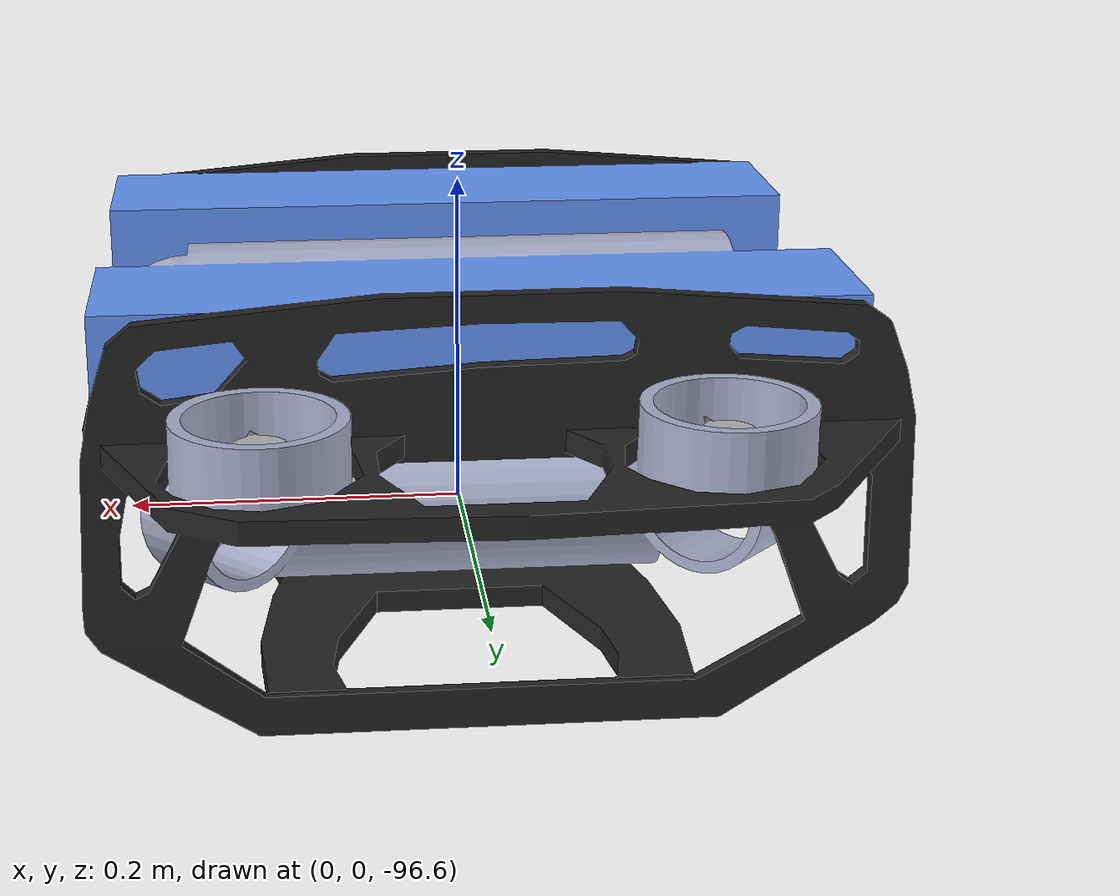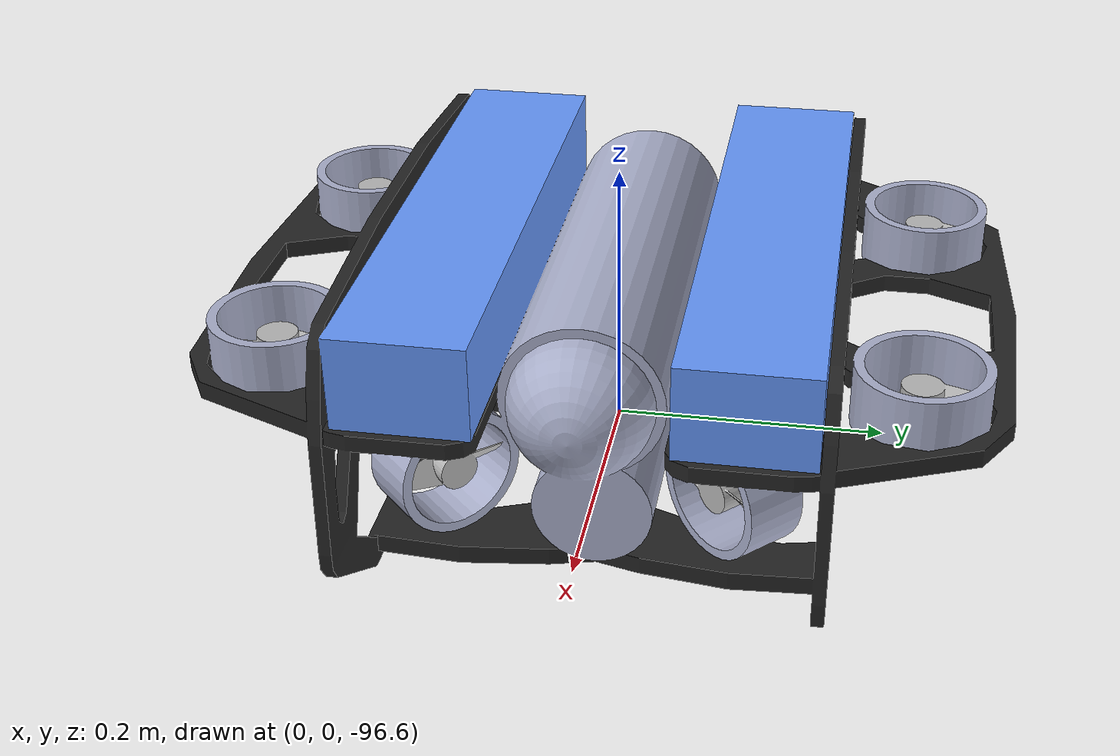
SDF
<?xml version="1.0" encoding="UTF-8"?>
<sdf version="1.9">
    <model name="uuv_bluerov2_heavy">
        <pose>0 0 -96.5   0 0 0</pose>
        <link name="base_link">
            <pose>0 0 0 0 -0 0</pose>
            <inertial>
                <mass>11</mass>
                <inertia>
                    <ixx>0.1</ixx>
                    <ixy>0</ixy>
                    <ixz>0</ixz>
                    <iyy>0.1</iyy>
                    <iyz>0</iyz>
                    <izz>0.1</izz>
                </inertia>
            </inertial>
            <collision name='base_link_collision'>
                <pose>0 0 0 0 -0 0</pose>
                <geometry>
                    <box>
                        <size>0.5 0.5 0.5</size>        <!-- Size of the box: To be adjusted, copy-pasted from omnicopter -->
                    </box>
                </geometry>
                <surface>
                    <contact>
                        <ode>
                            <min_depth>0.001</min_depth>
                            <max_vel>0</max_vel>
                        </ode>
                    </contact>
                    <friction>
                        <ode/>
                    </friction>
                </surface>
            </collision>
            <visual name="base_link_visual">
                <pose>0 0 -0.06 0 -0 0</pose>
                <geometry>
                    <mesh>
                        <uri>model://uuv_bluerov2_heavy/meshes/BlueROV2heavy.dae</uri>
                    </mesh>
                </geometry>
            </visual>
        <sensor name="air_pressure_sensor" type="air_pressure">
            <always_on>1</always_on>
            <update_rate>50</update_rate>
            <air_pressure>
                <pressure>
                    <noise type="gaussian">
                    <mean>0</mean>
                    <stddev>0.01</stddev>
                    </noise>
                </pressure>
            </air_pressure>
        </sensor>
        <sensor name="imu_sensor" type="imu">
            <always_on>1</always_on>
            <update_rate>250</update_rate>
            <imu>
            <angular_velocity>
                <x>
                <noise type="gaussian">
                    <mean>0</mean>
                    <stddev>0.00018665</stddev>
                    <dynamic_bias_stddev>3.8785e-05</dynamic_bias_stddev>
                    <dynamic_bias_correlation_time>1000</dynamic_bias_correlation_time>
                </noise>
                </x>
                <y>
                <noise type="gaussian">
                    <mean>0</mean>
                    <stddev>0.00018665</stddev>
                    <dynamic_bias_stddev>3.8785e-05</dynamic_bias_stddev>
                    <dynamic_bias_correlation_time>1000</dynamic_bias_correlation_time>
                </noise>
                </y>
                <z>
                <noise type="gaussian">
                    <mean>0</mean>
                    <stddev>0.00018665</stddev>
                    <dynamic_bias_stddev>3.8785e-05</dynamic_bias_stddev>
                    <dynamic_bias_correlation_time>1000</dynamic_bias_correlation_time>
                </noise>
                </z>
            </angular_velocity>
            <linear_acceleration>
                <x>
                <noise type="gaussian">
                    <mean>0</mean>
                    <stddev>0.00186</stddev>
                    <dynamic_bias_stddev>0.006</dynamic_bias_stddev>
                    <dynamic_bias_correlation_time>300</dynamic_bias_correlation_time>
                </noise>
                </x>
                <y>
                <noise type="gaussian">
                    <mean>0</mean>
                    <stddev>0.00186</stddev>
                    <dynamic_bias_stddev>0.006</dynamic_bias_stddev>
                    <dynamic_bias_correlation_time>300</dynamic_bias_correlation_time>
                </noise>
                </y>
                <z>
                <noise type="gaussian">
                    <mean>0</mean>
                    <stddev>0.00186</stddev>
                    <dynamic_bias_stddev>0.006</dynamic_bias_stddev>
                    <dynamic_bias_correlation_time>300</dynamic_bias_correlation_time>
                </noise>
                </z>
            </linear_acceleration>
            </imu>
        </sensor>
        <sensor name="navsat_sensor" type="navsat">
            <always_on>1</always_on>
            <update_rate>30</update_rate>
        </sensor>
        </link>
        <joint name="thruster0_joint" type="revolute">
            <axis>
                <xyz>0 0 1</xyz>
                <limit>
                    <lower>-1e+16</lower>
                    <upper>1e+16</upper>
                </limit>
            </axis>
            <parent>base_link</parent>
            <child>thruster0</child>
        </joint>
        <link name="thruster0">
            <pose>0.14 -0.10 -0.06 0 1.570796 -2.356194</pose>
            <inertial>
                <mass>1e-10</mass>
                <inertia>
                    <ixx>1e-06</ixx>
                    <ixy>0</ixy>
                    <ixz>0</ixz>
                    <iyy>1e-06</iyy>
                    <iyz>0</iyz>
                    <izz>1e-06</izz>
                </inertia>
            </inertial>
            <visual name="thruster0_visual">
                <geometry>
                    <mesh>
                        <scale>1 1 1</scale>
                        <uri>model://uuv_bluerov2_heavy/meshes/prop.dae</uri>
                    </mesh>
                </geometry>
            </visual>
        </link>

        <joint name="thruster1_joint" type="revolute">
            <axis>
                <xyz>0 0 1</xyz>
                <limit>
                    <lower>-1e+16</lower>
                    <upper>1e+16</upper>
                </limit>
            </axis>
            <parent>base_link</parent>
            <child>thruster1</child>
        </joint>
        <link name="thruster1">
            <pose>0.14 0.10 -0.06 0 1.570796 2.356194</pose>
            <inertial>
                <mass>1e-10</mass>
                <inertia>
                    <ixx>1e-06</ixx>
                    <ixy>0</ixy>
                    <ixz>0</ixz>
                    <iyy>1e-06</iyy>
                    <iyz>0</iyz>
                    <izz>1e-06</izz>
                </inertia>
            </inertial>
            <visual name="thruster1_visual">
                <geometry>
                    <mesh>
                        <scale>1 1 1</scale>
                        <uri>model://uuv_bluerov2_heavy/meshes/prop.dae</uri>
                    </mesh>
                </geometry>

            </visual>
        </link>

        <joint name="thruster2_joint" type="revolute">
            <axis>
                <xyz>0 0 1</xyz>
                <limit>
                    <lower>-1e+16</lower>
                    <upper>1e+16</upper>
                </limit>
            </axis>
            <parent>base_link</parent>
            <child>thruster2</child>
        </joint>
        <link name="thruster2">
            <pose>-0.14 -0.10 -0.06 0 1.570796 -0.78539815</pose>
            <inertial>
                <mass>1e-10</mass>
                <inertia>
                    <ixx>1e-06</ixx>
                    <ixy>0</ixy>
                    <ixz>0</ixz>
                    <iyy>1e-06</iyy>
                    <iyz>0</iyz>
                    <izz>1e-06</izz>
                </inertia>
            </inertial>
            <visual name="thruster2_visual">
                <geometry>
                    <mesh>
                        <scale>1 1 1</scale>
                        <uri>model://uuv_bluerov2_heavy/meshes/prop.dae</uri>
                    </mesh>
                </geometry>
            </visual>
        </link>

        <joint name="thruster3_joint" type="revolute">
            <axis>
                <xyz>0 0 1</xyz>
                <limit>
                    <lower>-1e+16</lower>
                    <upper>1e+16</upper>
                </limit>
            </axis>
            <parent>base_link</parent>
            <child>thruster3</child>
        </joint>
        <link name="thruster3">
            <pose>-0.14 0.10 -0.06 0 1.570796 0.78539815</pose>
            <inertial>
                <mass>1e-10</mass>
                <inertia>
                    <ixx>1e-06</ixx>
                    <ixy>0</ixy>
                    <ixz>0</ixz>
                    <iyy>1e-06</iyy>
                    <iyz>0</iyz>
                    <izz>1e-06</izz>
                </inertia>
            </inertial>
            <visual name="thruster3_visual">
                <geometry>
                    <mesh>
                        <scale>1 1 1</scale>
                        <uri>model://uuv_bluerov2_heavy/meshes/prop.dae</uri>
                    </mesh>
                </geometry>
            </visual>
        </link>

        <joint name="thruster4_joint" type="revolute">
            <axis>
                <xyz>0 0 1</xyz>
                <limit>
                    <lower>-1e+16</lower>
                    <upper>1e+16</upper>
                </limit>
            </axis>
            <parent>base_link</parent>
            <child>thruster4</child>
        </joint>
        <link name="thruster4">
            <pose>0.12 -0.22 0.0 3.1415 0 0</pose>
            <inertial>
                <mass>1e-10</mass>
                <inertia>
                    <ixx>1e-06</ixx>
                    <ixy>0</ixy>
                    <ixz>0</ixz>
                    <iyy>1e-06</iyy>
                    <iyz>0</iyz>
                    <izz>1e-06</izz>
                </inertia>
            </inertial>
            <visual name="thruster4_visual">
                <geometry>
                    <mesh>
                        <scale>1 1 1</scale>
                        <uri>model://uuv_bluerov2_heavy/meshes/prop.dae</uri>
                    </mesh>
                </geometry>

            </visual>
        </link>

        <joint name="thruster5_joint" type="revolute">
            <axis>
                <xyz>0 0 1</xyz>
                <limit>
                    <lower>-1e+16</lower>
                    <upper>1e+16</upper>
                </limit>
            </axis>
            <parent>base_link</parent>
            <child>thruster5</child>
        </joint>
        <link name="thruster5">
            <pose>0.12 0.22 0.0 3.1415 0 0</pose>
            <inertial>
                <mass>1e-10</mass>
                <inertia>
                    <ixx>1e-06</ixx>
                    <ixy>0</ixy>
                    <ixz>0</ixz>
                    <iyy>1e-06</iyy>
                    <iyz>0</iyz>
                    <izz>1e-06</izz>
                </inertia>
            </inertial>
            <visual name="thruster5_visual">
                <geometry>
                    <mesh>
                        <scale>1 1 1</scale>
                        <uri>model://uuv_bluerov2_heavy/meshes/prop.dae</uri>
                    </mesh>
                </geometry>
            </visual>
        </link>

        <joint name="thruster6_joint" type="revolute">
            <axis>
                <xyz>0 0 1</xyz>
                <limit>
                    <lower>-1e+16</lower>
                    <upper>1e+16</upper>
                </limit>
            </axis>
            <parent>base_link</parent>
            <child>thruster6</child>
        </joint>
        <link name="thruster6">
            <pose>-0.12 -0.22 0.0 3.1415 0 0</pose>
            <inertial>
                <mass>1e-10</mass>
                <inertia>
                    <ixx>1e-06</ixx>
                    <ixy>0</ixy>
                    <ixz>0</ixz>
                    <iyy>1e-06</iyy>
                    <iyz>0</iyz>
                    <izz>1e-06</izz>
                </inertia>
            </inertial>
            <visual name="thruster6_visual">
                <geometry>
                    <mesh>
                        <scale>1 1 1</scale>
                        <uri>model://uuv_bluerov2_heavy/meshes/prop.dae</uri>
                    </mesh>
                </geometry>
            </visual>
        </link>
        <joint name="thruster7_joint" type="revolute">
            <axis>
                <xyz>0 0 1</xyz>
                <limit>
                    <lower>-1e+16</lower>
                    <upper>1e+16</upper>
                </limit>
            </axis>
            <parent>base_link</parent>
            <child>thruster7</child>
        </joint>
        <link name="thruster7">
            <pose>-0.12 0.22 0.0 3.1415 0 0</pose>
            <inertial>
                <mass>1e-10</mass>
                <inertia>
                    <ixx>1e-06</ixx>
                    <ixy>0</ixy>
                    <ixz>0</ixz>
                    <iyy>1e-06</iyy>
                    <iyz>0</iyz>
                    <izz>1e-06</izz>
                </inertia>
            </inertial>
            <visual name="thruster7_visual">
                <geometry>
                    <mesh>
                        <scale>1 1 1</scale>
                        <uri>model://uuv_bluerov2_heavy/meshes/prop.dae</uri>
                    </mesh>
                </geometry>

            </visual>
        </link>
        <plugin filename="libGenericMotorModelPlugin.so" name="gz::sim::systems::GenericMotorModel">
            <jointName>thruster0_joint</jointName>
            <linkName>thruster0</linkName>
            <motorNumber>0</motorNumber>
            <turningDirection>ccw</turningDirection>
            <timeConstantUp>0.0125</timeConstantUp>
            <timeConstantDown>0.025</timeConstantDown>
            <maxRotVelocity>1100.0</maxRotVelocity>
            <motorConstant>10</motorConstant>
            <momentConstant>0.01</momentConstant>
            <commandSubTopic>command/motor_speed</commandSubTopic>
            <rotorDragCoefficient>0</rotorDragCoefficient>
            <rollingMomentCoefficient>0</rollingMomentCoefficient>
            <rotorVelocitySlowdownSim>0.025</rotorVelocitySlowdownSim>
            <motorType>force_polynomial</motorType>
            <controlMethod>duty_cycle</controlMethod>
            <minCommand>0.00</minCommand>
            <minDutyCycle>1100</minDutyCycle>
            <maxDutyCycle>1900</maxDutyCycle>
            <bidirectionalMotor>1</bidirectionalMotor>
            <positiveThrustPolynomial>[0.0,  4.53,  0.0, 0.0, 0.0, 0.0]</positiveThrustPolynomial>
            <negativeThrustPolynomial>[0.0,  3.52,  0.0, 0.0, 0.0, 0.0]</negativeThrustPolynomial>
        </plugin>
        <plugin filename="libGenericMotorModelPlugin.so" name="gz::sim::systems::GenericMotorModel">
            <jointName>thruster1_joint</jointName>
            <linkName>thruster1</linkName>
            <motorNumber>1</motorNumber>
            <turningDirection>ccw</turningDirection>
            <timeConstantUp>0.0125</timeConstantUp>
            <timeConstantDown>0.025</timeConstantDown>
            <maxRotVelocity>1100.0</maxRotVelocity>
            <motorConstant>10</motorConstant>
            <momentConstant>0.01</momentConstant>
            <commandSubTopic>command/motor_speed</commandSubTopic>
            <rotorDragCoefficient>0</rotorDragCoefficient>
            <rollingMomentCoefficient>0</rollingMomentCoefficient>
            <rotorVelocitySlowdownSim>0.025</rotorVelocitySlowdownSim>
            <motorType>force_polynomial</motorType>
            <controlMethod>duty_cycle</controlMethod>
            <minCommand>0.00</minCommand>
            <minDutyCycle>1100</minDutyCycle>
            <maxDutyCycle>1900</maxDutyCycle>
            <bidirectionalMotor>1</bidirectionalMotor>
            <positiveThrustPolynomial>[0.0,  4.53,  0.0, 0.0, 0.0, 0.0]</positiveThrustPolynomial>
            <negativeThrustPolynomial>[0.0,  3.52,  0.0, 0.0, 0.0, 0.0]</negativeThrustPolynomial>
        </plugin>
        <plugin filename="libGenericMotorModelPlugin.so" name="gz::sim::systems::GenericMotorModel">
            <jointName>thruster2_joint</jointName>
            <linkName>thruster2</linkName>
            <motorNumber>2</motorNumber>
            <turningDirection>ccw</turningDirection>
            <timeConstantUp>0.0125</timeConstantUp>
            <timeConstantDown>0.025</timeConstantDown>
            <maxRotVelocity>1100.0</maxRotVelocity>
            <motorConstant>10</motorConstant>
            <momentConstant>0.01</momentConstant>
            <commandSubTopic>command/motor_speed</commandSubTopic>
            <rotorDragCoefficient>0</rotorDragCoefficient>
            <rollingMomentCoefficient>0</rollingMomentCoefficient>
            <rotorVelocitySlowdownSim>0.025</rotorVelocitySlowdownSim>
            <motorType>force_polynomial</motorType>
            <controlMethod>duty_cycle</controlMethod>
            <minCommand>0.00</minCommand>
            <minDutyCycle>1100</minDutyCycle>
            <maxDutyCycle>1900</maxDutyCycle>
            <bidirectionalMotor>1</bidirectionalMotor>
            <positiveThrustPolynomial>[0.0,  4.53,  0.0, 0.0, 0.0, 0.0]</positiveThrustPolynomial>
            <negativeThrustPolynomial>[0.0,  3.52,  0.0, 0.0, 0.0, 0.0]</negativeThrustPolynomial>
        </plugin>
        <plugin filename="libGenericMotorModelPlugin.so" name="gz::sim::systems::GenericMotorModel">
            <jointName>thruster3_joint</jointName>
            <linkName>thruster3</linkName>
            <motorNumber>3</motorNumber>
            <turningDirection>ccw</turningDirection>
            <timeConstantUp>0.0125</timeConstantUp>
            <timeConstantDown>0.025</timeConstantDown>
            <maxRotVelocity>1100.0</maxRotVelocity>
            <motorConstant>10</motorConstant>
            <momentConstant>0.01</momentConstant>
            <commandSubTopic>command/motor_speed</commandSubTopic>
            <rotorDragCoefficient>0</rotorDragCoefficient>
            <rollingMomentCoefficient>0</rollingMomentCoefficient>
            <rotorVelocitySlowdownSim>0.025</rotorVelocitySlowdownSim>
            <motorType>force_polynomial</motorType>
            <controlMethod>duty_cycle</controlMethod>
            <minCommand>0.00</minCommand>
            <minDutyCycle>1100</minDutyCycle>
            <maxDutyCycle>1900</maxDutyCycle>
            <bidirectionalMotor>1</bidirectionalMotor>
            <positiveThrustPolynomial>[0.0,  4.53,  0.0, 0.0, 0.0, 0.0]</positiveThrustPolynomial>
            <negativeThrustPolynomial>[0.0,  3.52,  0.0, 0.0, 0.0, 0.0]</negativeThrustPolynomial>
        </plugin>
        <plugin filename="libGenericMotorModelPlugin.so" name="gz::sim::systems::GenericMotorModel">
            <jointName>thruster4_joint</jointName>
            <linkName>thruster4</linkName>
            <motorNumber>4</motorNumber>
            <turningDirection>ccw</turningDirection>
            <timeConstantUp>0.0125</timeConstantUp>
            <timeConstantDown>0.025</timeConstantDown>
            <maxRotVelocity>1100.0</maxRotVelocity>
            <motorConstant>10</motorConstant>
            <momentConstant>0.01</momentConstant>
            <commandSubTopic>command/motor_speed</commandSubTopic>
            <rotorDragCoefficient>0</rotorDragCoefficient>
            <rollingMomentCoefficient>0</rollingMomentCoefficient>
            <rotorVelocitySlowdownSim>0.025</rotorVelocitySlowdownSim>
            <motorType>force_polynomial</motorType>
            <controlMethod>duty_cycle</controlMethod>
            <minCommand>0.00</minCommand>
            <minDutyCycle>1100</minDutyCycle>
            <maxDutyCycle>1900</maxDutyCycle>
            <bidirectionalMotor>1</bidirectionalMotor>
            <positiveThrustPolynomial>[0.0,  4.53,  0.0, 0.0, 0.0, 0.0]</positiveThrustPolynomial>
            <negativeThrustPolynomial>[0.0,  3.52,  0.0, 0.0, 0.0, 0.0]</negativeThrustPolynomial>
        </plugin>
        <plugin filename="libGenericMotorModelPlugin.so" name="gz::sim::systems::GenericMotorModel">
            <jointName>thruster5_joint</jointName>
            <linkName>thruster5</linkName>
            <motorNumber>5</motorNumber>
            <turningDirection>ccw</turningDirection>
            <timeConstantUp>0.0125</timeConstantUp>
            <timeConstantDown>0.025</timeConstantDown>
            <maxRotVelocity>1100.0</maxRotVelocity>
            <motorConstant>10</motorConstant>
            <momentConstant>0.01</momentConstant>
            <commandSubTopic>command/motor_speed</commandSubTopic>
            <rotorDragCoefficient>0</rotorDragCoefficient>
            <rollingMomentCoefficient>0</rollingMomentCoefficient>
            <rotorVelocitySlowdownSim>0.025</rotorVelocitySlowdownSim>
            <motorType>force_polynomial</motorType>
            <controlMethod>duty_cycle</controlMethod>
            <minCommand>0.00</minCommand>
            <minDutyCycle>1100</minDutyCycle>
            <maxDutyCycle>1900</maxDutyCycle>
            <bidirectionalMotor>1</bidirectionalMotor>
            <positiveThrustPolynomial>[0.0,  4.53,  0.0, 0.0, 0.0, 0.0]</positiveThrustPolynomial>
            <negativeThrustPolynomial>[0.0,  3.52,  0.0, 0.0, 0.0, 0.0]</negativeThrustPolynomial>
        </plugin>
        <plugin filename="libGenericMotorModelPlugin.so" name="gz::sim::systems::GenericMotorModel">
            <jointName>thruster6_joint</jointName>
            <linkName>thruster6</linkName>
            <motorNumber>6</motorNumber>
            <turningDirection>ccw</turningDirection>
            <timeConstantUp>0.0125</timeConstantUp>
            <timeConstantDown>0.025</timeConstantDown>
            <maxRotVelocity>1100.0</maxRotVelocity>
            <motorConstant>10</motorConstant>
            <momentConstant>0.01</momentConstant>
            <commandSubTopic>command/motor_speed</commandSubTopic>
            <rotorDragCoefficient>0</rotorDragCoefficient>
            <rollingMomentCoefficient>0</rollingMomentCoefficient>
            <rotorVelocitySlowdownSim>0.025</rotorVelocitySlowdownSim>
            <motorType>force_polynomial</motorType>
            <controlMethod>duty_cycle</controlMethod>
            <minCommand>0.00</minCommand>
            <minDutyCycle>1100</minDutyCycle>
            <maxDutyCycle>1900</maxDutyCycle>
            <bidirectionalMotor>1</bidirectionalMotor>
            <positiveThrustPolynomial>[0.0,  4.53,  0.0, 0.0, 0.0, 0.0]</positiveThrustPolynomial>
            <negativeThrustPolynomial>[0.0,  3.52,  0.0, 0.0, 0.0, 0.0]</negativeThrustPolynomial>
        </plugin>
        <plugin filename="libGenericMotorModelPlugin.so" name="gz::sim::systems::GenericMotorModel">
            <jointName>thruster7_joint</jointName>
            <linkName>thruster7</linkName>
            <motorNumber>7</motorNumber>
            <turningDirection>ccw</turningDirection>
            <timeConstantUp>0.0125</timeConstantUp>
            <timeConstantDown>0.025</timeConstantDown>
            <maxRotVelocity>1100.0</maxRotVelocity>
            <motorConstant>10</motorConstant>
            <momentConstant>0.01</momentConstant>
            <commandSubTopic>command/motor_speed</commandSubTopic>
            <rotorDragCoefficient>0</rotorDragCoefficient>
            <rollingMomentCoefficient>0</rollingMomentCoefficient>
            <rotorVelocitySlowdownSim>0.025</rotorVelocitySlowdownSim>
            <motorType>force_polynomial</motorType>
            <controlMethod>duty_cycle</controlMethod>
            <minCommand>0.00</minCommand>
            <minDutyCycle>1100</minDutyCycle>
            <maxDutyCycle>1900</maxDutyCycle>
            <bidirectionalMotor>1</bidirectionalMotor>
            <positiveThrustPolynomial>[0.0,  4.53,  0.0, 0.0, 0.0, 0.0]</positiveThrustPolynomial>
            <negativeThrustPolynomial>[0.0,  3.52,  0.0, 0.0, 0.0, 0.0]</negativeThrustPolynomial>
        </plugin>
        <plugin filename="gz-sim-odometry-publisher-system" name="gz::sim::systems::OdometryPublisher">
            <dimensions>3</dimensions>
        </plugin>
    </model>
</sdf>
